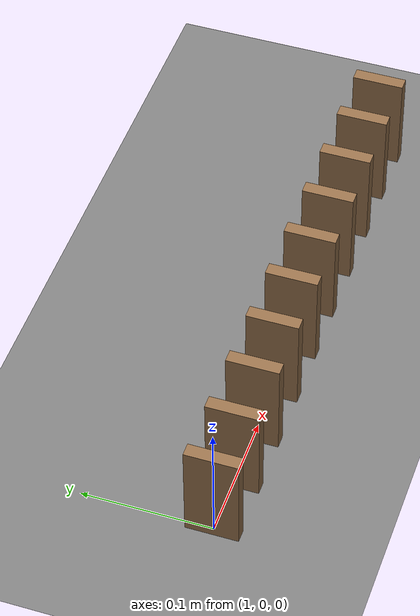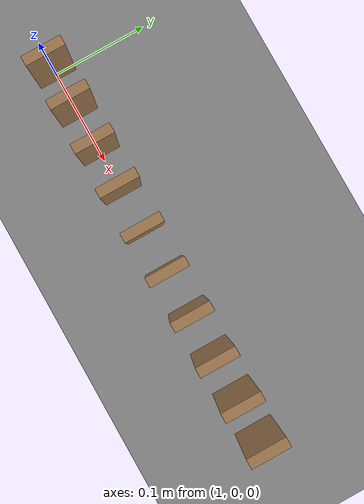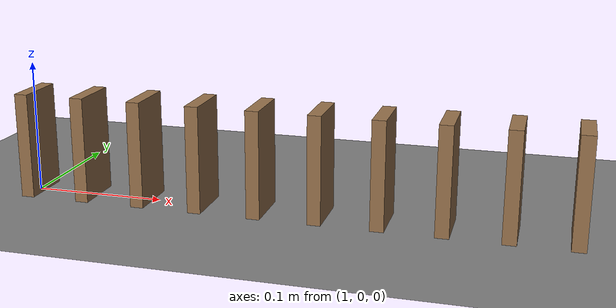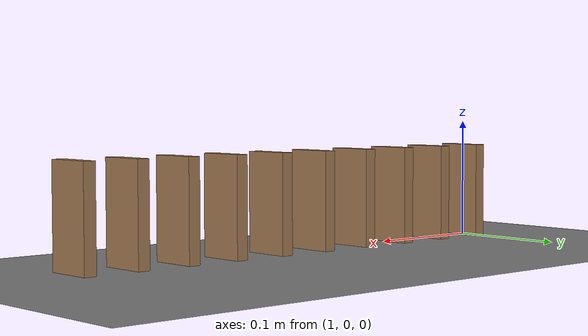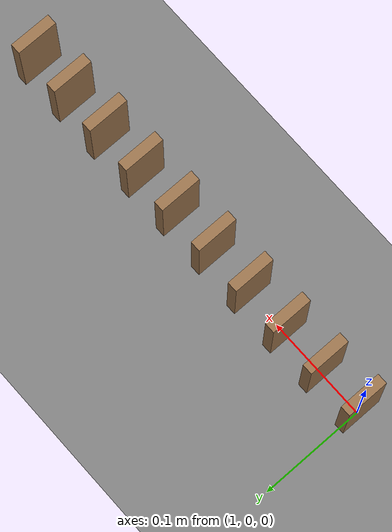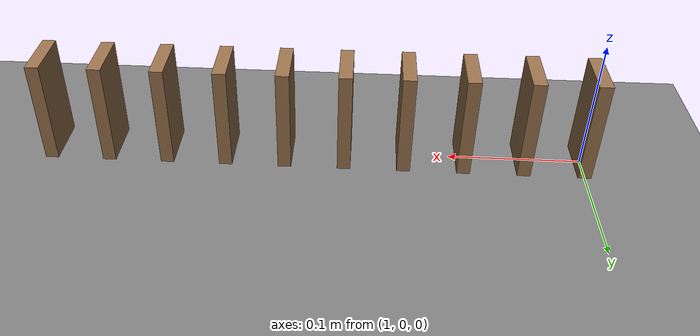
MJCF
<mujoco model="ten_dominoes">
  <compiler angle="radian"/>
  <option timestep="0.002"/>
  <worldbody>
    <geom name="floor" type="plane" size="6 6 0.1" friction="0.8 0.005 0.002"/>
    <body name="domino1" pos="1 0 0.04">
      <freejoint/>
      <geom name="domino1" type="box" pos="0 0 0" size="0.005 0.02 0.04" mass="0.02" friction="0.5 0.005 0.0001" rgba="0.6 0.45 0.3 1"/>
    </body>
    <body name="domino2" pos="1.045 0 0.04">
      <freejoint/>
      <geom name="domino2" type="box" pos="0 0 0" size="0.005 0.02 0.04" mass="0.02" friction="0.5 0.005 0.0001" rgba="0.6 0.45 0.3 1"/>
    </body>
    <body name="domino3" pos="1.09 0 0.04">
      <freejoint/>
      <geom name="domino3" type="box" pos="0 0 0" size="0.005 0.02 0.04" mass="0.02" friction="0.5 0.005 0.0001" rgba="0.6 0.45 0.3 1"/>
    </body>
    <body name="domino4" pos="1.135 0 0.04">
      <freejoint/>
      <geom name="domino4" type="box" pos="0 0 0" size="0.005 0.02 0.04" mass="0.02" friction="0.5 0.005 0.0001" rgba="0.6 0.45 0.3 1"/>
    </body>
    <body name="domino5" pos="1.18 0 0.04">
      <freejoint/>
      <geom name="domino5" type="box" pos="0 0 0" size="0.005 0.02 0.04" mass="0.02" friction="0.5 0.005 0.0001" rgba="0.6 0.45 0.3 1"/>
    </body>
    <body name="domino6" pos="1.225 0 0.04">
      <freejoint/>
      <geom name="domino6" type="box" pos="0 0 0" size="0.005 0.02 0.04" mass="0.02" friction="0.5 0.005 0.0001" rgba="0.6 0.45 0.3 1"/>
    </body>
    <body name="domino7" pos="1.27 0 0.04">
      <freejoint/>
      <geom name="domino7" type="box" pos="0 0 0" size="0.005 0.02 0.04" mass="0.02" friction="0.5 0.005 0.0001" rgba="0.6 0.45 0.3 1"/>
    </body>
    <body name="domino8" pos="1.315 0 0.04">
      <freejoint/>
      <geom name="domino8" type="box" pos="0 0 0" size="0.005 0.02 0.04" mass="0.02" friction="0.5 0.005 0.0001" rgba="0.6 0.45 0.3 1"/>
    </body>
    <body name="domino9" pos="1.36 0 0.04">
      <freejoint/>
      <geom name="domino9" type="box" pos="0 0 0" size="0.005 0.02 0.04" mass="0.02" friction="0.5 0.005 0.0001" rgba="0.6 0.45 0.3 1"/>
    </body>
    <body name="domino10" pos="1.405 0 0.04">
      <freejoint/>
      <geom name="domino10" type="box" pos="0 0 0" size="0.005 0.02 0.04" mass="0.02" friction="0.5 0.005 0.0001" rgba="0.6 0.45 0.3 1"/>
    </body>
  </worldbody>
  <keyframe>
    <key name="start" qpos="1 0 0.04 1 0 0 0 1.045 0 0.04 1 0 0 0 1.09 0 0.04 1 0 0 0 1.135 0 0.04 1 0 0 0 1.18 0 0.04 1 0 0 0 1.225 0 0.04 1 0 0 0 1.27 0 0.04 1 0 0 0 1.315 0 0.04 1 0 0 0 1.36 0 0.04 1 0 0 0 1.405 0 0.04 1 0 0 0" qvel="0 0 0 0 20 0 0 0 0 0 0 0 0 0 0 0 0 0 0 0 0 0 0 0 0 0 0 0 0 0 0 0 0 0 0 0 0 0 0 0 0 0 0 0 0 0 0 0 0 0 0 0 0 0 0 0 0 0 0 0"/>
  </keyframe>
</mujoco>
